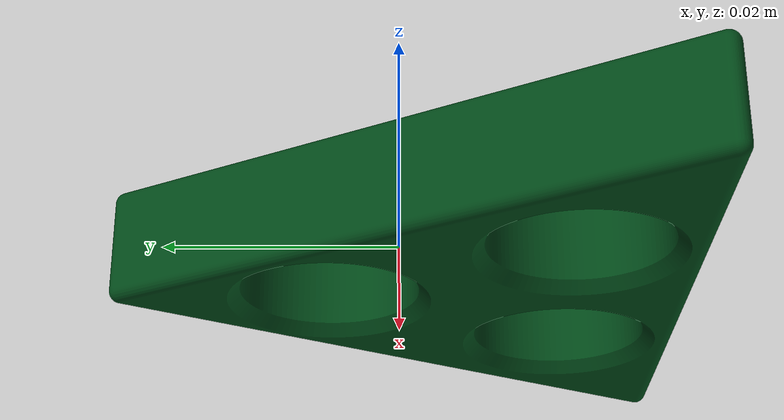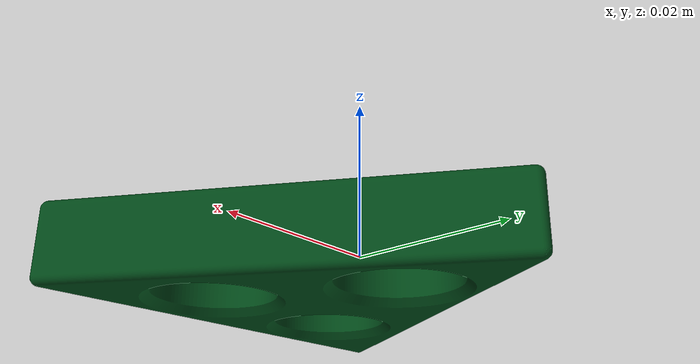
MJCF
<mujoco model="toy_five_insertion_three">
  <default>
    <default class="toy_five_insertion_three_visual">
      <geom group="2" type="mesh" contype="0" conaffinity="0"/>
    </default>
    <default class="toy_five_insertion_three_collision">
      <geom group="3" type="mesh"/>
    </default>
  </default>
  <asset>
    <material name="toy_five_insertion_three_material" specular="0.5" shininess="0.5" rgba="0 0.2788915 0.09084081 1"/>
    <mesh file="toy_five_insertion_three.obj"/>
    <mesh file="toy_five_insertion_three_collision_0.obj"/>
    <mesh file="toy_five_insertion_three_collision_1.obj"/>
    <mesh file="toy_five_insertion_three_collision_2.obj"/>
    <mesh file="toy_five_insertion_three_collision_3.obj"/>
    <mesh file="toy_five_insertion_three_collision_4.obj"/>
    <mesh file="toy_five_insertion_three_collision_5.obj"/>
    <mesh file="toy_five_insertion_three_collision_6.obj"/>
    <mesh file="toy_five_insertion_three_collision_7.obj"/>
    <mesh file="toy_five_insertion_three_collision_8.obj"/>
    <mesh file="toy_five_insertion_three_collision_9.obj"/>
    <mesh file="toy_five_insertion_three_collision_10.obj"/>
    <mesh file="toy_five_insertion_three_collision_11.obj"/>
    <mesh file="toy_five_insertion_three_collision_12.obj"/>
    <mesh file="toy_five_insertion_three_collision_13.obj"/>
    <mesh file="toy_five_insertion_three_collision_14.obj"/>
    <mesh file="toy_five_insertion_three_collision_15.obj"/>
    <mesh file="toy_five_insertion_three_collision_16.obj"/>
    <mesh file="toy_five_insertion_three_collision_17.obj"/>
    <mesh file="toy_five_insertion_three_collision_18.obj"/>
    <mesh file="toy_five_insertion_three_collision_19.obj"/>
    <mesh file="toy_five_insertion_three_collision_20.obj"/>
    <mesh file="toy_five_insertion_three_collision_21.obj"/>
    <mesh file="toy_five_insertion_three_collision_22.obj"/>
    <mesh file="toy_five_insertion_three_collision_23.obj"/>
    <mesh file="toy_five_insertion_three_collision_24.obj"/>
    <mesh file="toy_five_insertion_three_collision_25.obj"/>
    <mesh file="toy_five_insertion_three_collision_26.obj"/>
    <mesh file="toy_five_insertion_three_collision_27.obj"/>
    <mesh file="toy_five_insertion_three_collision_28.obj"/>
    <mesh file="toy_five_insertion_three_collision_29.obj"/>
    <mesh file="toy_five_insertion_three_collision_30.obj"/>
    <mesh file="toy_five_insertion_three_collision_31.obj"/>
    <mesh file="toy_five_insertion_three_collision_32.obj"/>
    <mesh file="toy_five_insertion_three_collision_33.obj"/>
    <mesh file="toy_five_insertion_three_collision_34.obj"/>
    <mesh file="toy_five_insertion_three_collision_35.obj"/>
    <mesh file="toy_five_insertion_three_collision_36.obj"/>
    <mesh file="toy_five_insertion_three_collision_37.obj"/>
    <mesh file="toy_five_insertion_three_collision_38.obj"/>
    <mesh file="toy_five_insertion_three_collision_39.obj"/>
    <mesh file="toy_five_insertion_three_collision_40.obj"/>
    <mesh file="toy_five_insertion_three_collision_41.obj"/>
    <mesh file="toy_five_insertion_three_collision_42.obj"/>
    <mesh file="toy_five_insertion_three_collision_43.obj"/>
    <mesh file="toy_five_insertion_three_collision_44.obj"/>
    <mesh file="toy_five_insertion_three_collision_45.obj"/>
    <mesh file="toy_five_insertion_three_collision_46.obj"/>
    <mesh file="toy_five_insertion_three_collision_47.obj"/>
    <mesh file="toy_five_insertion_three_collision_48.obj"/>
    <mesh file="toy_five_insertion_three_collision_49.obj"/>
    <mesh file="toy_five_insertion_three_collision_50.obj"/>
  </asset>
  <worldbody>
    <body name="toy_five_insertion_three">
      <freejoint/>
      <geom material="toy_five_insertion_three_material" mesh="toy_five_insertion_three" class="toy_five_insertion_three_visual"/>
      <geom mesh="toy_five_insertion_three_collision_0" rgba="0.07932670227106076 0.3820000207319537 0.21833225224978003 1" class="toy_five_insertion_three_collision"/>
      <geom mesh="toy_five_insertion_three_collision_1" rgba="0.7425397462681239 0.3806331141234994 0.18450467445002838 1" class="toy_five_insertion_three_collision"/>
      <geom mesh="toy_five_insertion_three_collision_2" rgba="0.07062226330772037 0.3917280529030802 0.2159867608116276 1" class="toy_five_insertion_three_collision"/>
      <geom mesh="toy_five_insertion_three_collision_3" rgba="0.5718723028331936 0.9960505059889998 0.7773925131947665 1" class="toy_five_insertion_three_collision"/>
      <geom mesh="toy_five_insertion_three_collision_4" rgba="0.5217282897202097 0.5011547685435812 0.2236801911280657 1" class="toy_five_insertion_three_collision"/>
      <geom mesh="toy_five_insertion_three_collision_5" rgba="0.28606275538037307 0.5207344557496771 0.021418158365173023 1" class="toy_five_insertion_three_collision"/>
      <geom mesh="toy_five_insertion_three_collision_6" rgba="0.10490962226477185 0.09466207235420254 0.7222089445123003 1" class="toy_five_insertion_three_collision"/>
      <geom mesh="toy_five_insertion_three_collision_7" rgba="0.799208911423873 0.9827961363834172 0.24649484441465463 1" class="toy_five_insertion_three_collision"/>
      <geom mesh="toy_five_insertion_three_collision_8" rgba="0.9080178811297913 0.12368262900336413 0.025942687782685492 1" class="toy_five_insertion_three_collision"/>
      <geom mesh="toy_five_insertion_three_collision_9" rgba="0.44795396214225125 0.6467211196914661 0.3891936759927762 1" class="toy_five_insertion_three_collision"/>
      <geom mesh="toy_five_insertion_three_collision_10" rgba="0.35322481408126416 0.5352327183196584 0.4644794059168922 1" class="toy_five_insertion_three_collision"/>
      <geom mesh="toy_five_insertion_three_collision_11" rgba="0.4239675227048245 0.765365896089375 0.5861329154576569 1" class="toy_five_insertion_three_collision"/>
      <geom mesh="toy_five_insertion_three_collision_12" rgba="0.4371707549632795 0.1929110651940944 0.3026196286671713 1" class="toy_five_insertion_three_collision"/>
      <geom mesh="toy_five_insertion_three_collision_13" rgba="0.22693460651681974 0.23048808973112278 0.41978434630188743 1" class="toy_five_insertion_three_collision"/>
      <geom mesh="toy_five_insertion_three_collision_14" rgba="0.17506750445320418 0.7211222052392182 0.5145914386750252 1" class="toy_five_insertion_three_collision"/>
      <geom mesh="toy_five_insertion_three_collision_15" rgba="0.6329045843625503 0.22323007251420157 0.21215519784017078 1" class="toy_five_insertion_three_collision"/>
      <geom mesh="toy_five_insertion_three_collision_16" rgba="0.6389005942185028 0.5550211487913957 0.7376648049463397 1" class="toy_five_insertion_three_collision"/>
      <geom mesh="toy_five_insertion_three_collision_17" rgba="0.8359202067225115 0.32956643320145984 0.5135731604221094 1" class="toy_five_insertion_three_collision"/>
      <geom mesh="toy_five_insertion_three_collision_18" rgba="0.43448406066383227 0.07554782412728311 0.930601314688839 1" class="toy_five_insertion_three_collision"/>
      <geom mesh="toy_five_insertion_three_collision_19" rgba="0.29181461105139006 0.9051163526053067 0.49253448923998144 1" class="toy_five_insertion_three_collision"/>
      <geom mesh="toy_five_insertion_three_collision_20" rgba="0.4459615071113826 0.19870665876842308 0.5756210495724366 1" class="toy_five_insertion_three_collision"/>
      <geom mesh="toy_five_insertion_three_collision_21" rgba="0.5977554387927022 0.9308508863125452 0.7789948429804592 1" class="toy_five_insertion_three_collision"/>
      <geom mesh="toy_five_insertion_three_collision_22" rgba="0.061808401078452535 0.5365762086375999 0.6574300229798736 1" class="toy_five_insertion_three_collision"/>
      <geom mesh="toy_five_insertion_three_collision_23" rgba="0.9307983520042327 0.14570822440964415 0.9138896904962858 1" class="toy_five_insertion_three_collision"/>
      <geom mesh="toy_five_insertion_three_collision_24" rgba="0.1642927496546931 0.33305798655219176 0.05855909208883503 1" class="toy_five_insertion_three_collision"/>
      <geom mesh="toy_five_insertion_three_collision_25" rgba="0.8757365436749429 0.8982495861348925 0.8625186061350034 1" class="toy_five_insertion_three_collision"/>
      <geom mesh="toy_five_insertion_three_collision_26" rgba="0.0029888184788193772 0.9335969038218326 0.3252281845319086 1" class="toy_five_insertion_three_collision"/>
      <geom mesh="toy_five_insertion_three_collision_27" rgba="0.9116490524819985 0.07128367194993734 0.16197627582215213 1" class="toy_five_insertion_three_collision"/>
      <geom mesh="toy_five_insertion_three_collision_28" rgba="0.5475272095379552 0.5340795717181479 0.014035030414347283 1" class="toy_five_insertion_three_collision"/>
      <geom mesh="toy_five_insertion_three_collision_29" rgba="0.2379117332159476 0.05331938826184013 0.311788686502275 1" class="toy_five_insertion_three_collision"/>
      <geom mesh="toy_five_insertion_three_collision_30" rgba="0.18150411776129005 0.9318503302972378 0.21745467289984322 1" class="toy_five_insertion_three_collision"/>
      <geom mesh="toy_five_insertion_three_collision_31" rgba="0.33838401730427714 0.3668644505939811 0.06390610713776379 1" class="toy_five_insertion_three_collision"/>
      <geom mesh="toy_five_insertion_three_collision_32" rgba="0.2020477020586805 0.872119813657472 0.7887629141818959 1" class="toy_five_insertion_three_collision"/>
      <geom mesh="toy_five_insertion_three_collision_33" rgba="0.1901414321979329 0.4708149696351449 0.2634794828720476 1" class="toy_five_insertion_three_collision"/>
      <geom mesh="toy_five_insertion_three_collision_34" rgba="0.8528775691556554 0.7000013716721291 0.44043603836011613 1" class="toy_five_insertion_three_collision"/>
      <geom mesh="toy_five_insertion_three_collision_35" rgba="0.7465657238661498 0.6766545947921381 0.40672083448822327 1" class="toy_five_insertion_three_collision"/>
      <geom mesh="toy_five_insertion_three_collision_36" rgba="0.5957103600307245 0.5542203607464714 0.13691909538135283 1" class="toy_five_insertion_three_collision"/>
      <geom mesh="toy_five_insertion_three_collision_37" rgba="0.1278910620543695 0.10683686156917871 0.10872268860221812 1" class="toy_five_insertion_three_collision"/>
      <geom mesh="toy_five_insertion_three_collision_38" rgba="0.6335482212788452 0.7905553744413045 0.5739552873917999 1" class="toy_five_insertion_three_collision"/>
      <geom mesh="toy_five_insertion_three_collision_39" rgba="0.8389421530912852 0.056317332693855304 0.37412390422119857 1" class="toy_five_insertion_three_collision"/>
      <geom mesh="toy_five_insertion_three_collision_40" rgba="0.029947672017857196 0.16506986253834133 0.3014718687530519 1" class="toy_five_insertion_three_collision"/>
      <geom mesh="toy_five_insertion_three_collision_41" rgba="0.35287515553587945 0.9365992185752006 0.9689324553224703 1" class="toy_five_insertion_three_collision"/>
      <geom mesh="toy_five_insertion_three_collision_42" rgba="0.8663173893614186 0.017346984157020073 0.7037590647938965 1" class="toy_five_insertion_three_collision"/>
      <geom mesh="toy_five_insertion_three_collision_43" rgba="0.28557314965666447 0.4961957989018293 0.01282460379241468 1" class="toy_five_insertion_three_collision"/>
      <geom mesh="toy_five_insertion_three_collision_44" rgba="0.7905176210222374 0.633774643338868 0.8643721191515891 1" class="toy_five_insertion_three_collision"/>
      <geom mesh="toy_five_insertion_three_collision_45" rgba="0.9644211479996427 0.9394239143433066 0.1737683472408248 1" class="toy_five_insertion_three_collision"/>
      <geom mesh="toy_five_insertion_three_collision_46" rgba="0.9041638337597494 0.6644467346313511 0.7531387060784432 1" class="toy_five_insertion_three_collision"/>
      <geom mesh="toy_five_insertion_three_collision_47" rgba="0.028443067955688517 0.7400666160738018 0.3057922040831933 1" class="toy_five_insertion_three_collision"/>
      <geom mesh="toy_five_insertion_three_collision_48" rgba="0.8004135064587499 0.2900481404948059 0.2797664708074554 1" class="toy_five_insertion_three_collision"/>
      <geom mesh="toy_five_insertion_three_collision_49" rgba="0.023540338729390986 0.09353240775722493 0.016404754199275673 1" class="toy_five_insertion_three_collision"/>
      <geom mesh="toy_five_insertion_three_collision_50" rgba="0.727773529142949 0.23356277012512194 0.49144622636569313 1" class="toy_five_insertion_three_collision"/>
    </body>
  </worldbody>
</mujoco>
